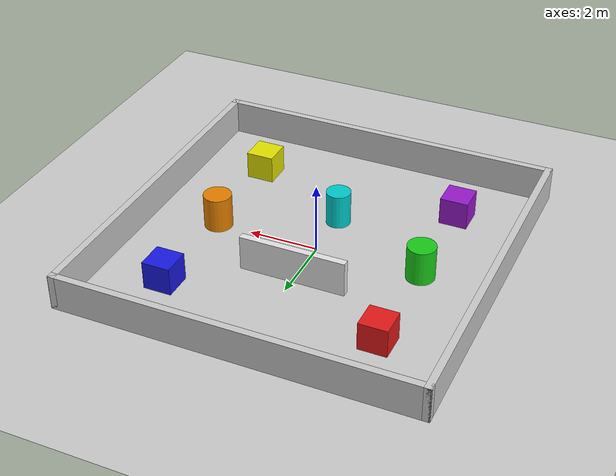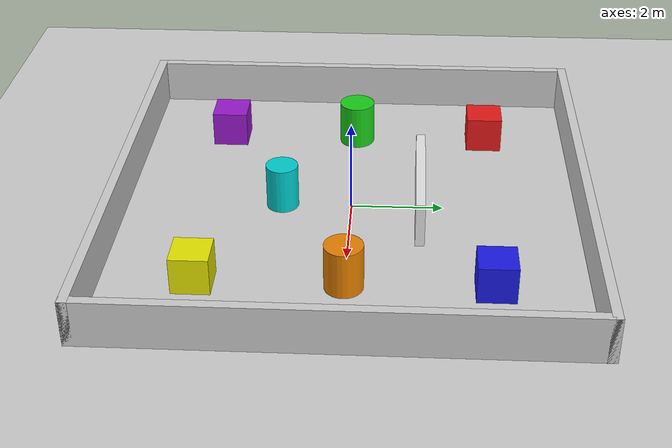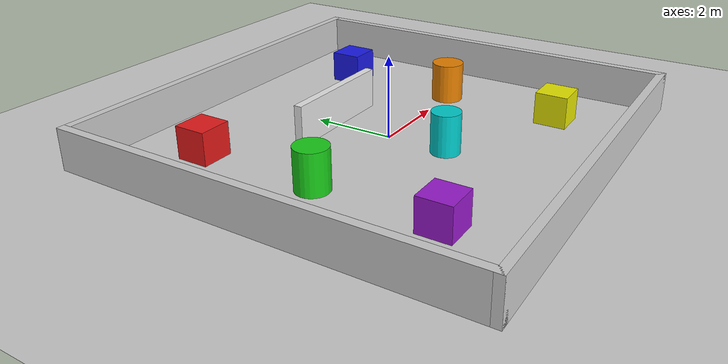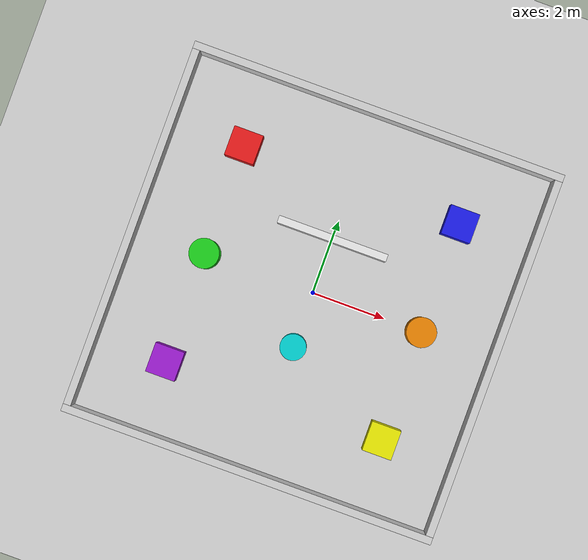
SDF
<?xml version="1.0"?>
<sdf version="1.6">
  <world name="simple_world">

    <!-- ===== LIGHTING ===== -->
    <light name="sun" type="directional">
      <cast_shadows>true</cast_shadows>
      <pose>0 0 10 0 0 0</pose>
      <diffuse>0.9 0.9 0.9 1</diffuse>
      <specular>0.2 0.2 0.2 1</specular>
      <direction>-0.5 0.1 -0.9</direction>
    </light>

    <include><uri>model://ground_plane</uri></include>

    <!-- North wall -->
    <model name="wall_north"><static>true</static>
      <pose>0 5 0.5 0 0 0</pose>
      <link name="link">
        <collision name="c">
          <geometry><box><size>10.2 0.2 1.0</size></box></geometry>
        </collision>
        <visual name="v">
          <geometry><box><size>10.2 0.2 1.0</size></box></geometry>
          <material>
            <ambient>0.8 0.8 0.8 1</ambient>
            <diffuse>0.8 0.8 0.8 1</diffuse>
          </material>
        </visual>
      </link>
    </model>

    <!-- South wall -->
    <model name="wall_south"><static>true</static>
      <pose>0 -5 0.5 0 0 0</pose>
      <link name="link">
        <collision name="c">
          <geometry><box><size>10.2 0.2 1.0</size></box></geometry>
        </collision>
        <visual name="v">
          <geometry><box><size>10.2 0.2 1.0</size></box></geometry>
          <material>
            <ambient>0.8 0.8 0.8 1</ambient>
            <diffuse>0.8 0.8 0.8 1</diffuse>
          </material>
        </visual>
      </link>
    </model>

    <!-- East wall -->
    <model name="wall_east"><static>true</static>
      <pose>5 0 0.5 0 0 0</pose>
      <link name="link">
        <collision name="c">
          <geometry><box><size>0.2 10.2 1.0</size></box></geometry>
        </collision>
        <visual name="v">
          <geometry><box><size>0.2 10.2 1.0</size></box></geometry>
          <material>
            <ambient>0.8 0.8 0.8 1</ambient>
            <diffuse>0.8 0.8 0.8 1</diffuse>
          </material>
        </visual>
      </link>
    </model>

    <!-- West wall -->
    <model name="wall_west"><static>true</static>
      <pose>-5 0 0.5 0 0 0</pose>
      <link name="link">
        <collision name="c">
          <geometry><box><size>0.2 10.2 1.0</size></box></geometry>
        </collision>
        <visual name="v">
          <geometry><box><size>0.2 10.2 1.0</size></box></geometry>
          <material>
            <ambient>0.8 0.8 0.8 1</ambient>
            <diffuse>0.8 0.8 0.8 1</diffuse>
          </material>
        </visual>
      </link>
    </model>

    <!-- Obstacle 1: Red box — top left area -->
    <model name="obs_1"><static>true</static>
      <pose>-3 3 0.4 0 0 0</pose>
      <link name="link">
        <collision name="c">
          <geometry><box><size>0.8 0.8 0.8</size></box></geometry>
        </collision>
        <visual name="v">
          <geometry><box><size>0.8 0.8 0.8</size></box></geometry>
          <material>
            <ambient>0.9 0.1 0.1 1</ambient>
            <diffuse>0.9 0.1 0.1 1</diffuse>
          </material>
        </visual>
      </link>
    </model>

    <!-- Obstacle 2: Blue box — top right area -->
    <model name="obs_2"><static>true</static>
      <pose>3 3 0.4 0 0 0</pose>
      <link name="link">
        <collision name="c">
          <geometry><box><size>0.8 0.8 0.8</size></box></geometry>
        </collision>
        <visual name="v">
          <geometry><box><size>0.8 0.8 0.8</size></box></geometry>
          <material>
            <ambient>0.1 0.1 0.9 1</ambient>
            <diffuse>0.1 0.1 0.9 1</diffuse>
          </material>
        </visual>
      </link>
    </model>

    <!-- Obstacle 3: Green cylinder — left side -->
    <model name="obs_3"><static>true</static>
      <pose>-3 0 0.5 0 0 0</pose>
      <link name="link">
        <collision name="c">
          <geometry>
            <cylinder><radius>0.4</radius><length>1.0</length></cylinder>
          </geometry>
        </collision>
        <visual name="v">
          <geometry>
            <cylinder><radius>0.4</radius><length>1.0</length></cylinder>
          </geometry>
          <material>
            <ambient>0.1 0.8 0.1 1</ambient>
            <diffuse>0.1 0.8 0.1 1</diffuse>
          </material>
        </visual>
      </link>
    </model>

    <!-- Obstacle 4: Orange cylinder — right side -->
    <model name="obs_4"><static>true</static>
      <pose>3 0 0.5 0 0 0</pose>
      <link name="link">
        <collision name="c">
          <geometry>
            <cylinder><radius>0.4</radius><length>1.0</length></cylinder>
          </geometry>
        </collision>
        <visual name="v">
          <geometry>
            <cylinder><radius>0.4</radius><length>1.0</length></cylinder>
          </geometry>
          <material>
            <ambient>0.9 0.5 0.0 1</ambient>
            <diffuse>0.9 0.5 0.0 1</diffuse>
          </material>
        </visual>
      </link>
    </model>

    <!-- Obstacle 5: Purple box — bottom left -->
    <model name="obs_5"><static>true</static>
      <pose>-3 -3 0.4 0 0 0</pose>
      <link name="link">
        <collision name="c">
          <geometry><box><size>0.8 0.8 0.8</size></box></geometry>
        </collision>
        <visual name="v">
          <geometry><box><size>0.8 0.8 0.8</size></box></geometry>
          <material>
            <ambient>0.6 0.1 0.8 1</ambient>
            <diffuse>0.6 0.1 0.8 1</diffuse>
          </material>
        </visual>
      </link>
    </model>

    <!-- Obstacle 6: Yellow box — bottom right -->
    <model name="obs_6"><static>true</static>
      <pose>3 -3 0.4 0 0 0</pose>
      <link name="link">
        <collision name="c">
          <geometry><box><size>0.8 0.8 0.8</size></box></geometry>
        </collision>
        <visual name="v">
          <geometry><box><size>0.8 0.8 0.8</size></box></geometry>
          <material>
            <ambient>0.9 0.9 0.0 1</ambient>
            <diffuse>0.9 0.9 0.0 1</diffuse>
          </material>
        </visual>
      </link>
    </model>

    <!-- Obstacle 7: White long wall — horizontal centre divider -->
    <!-- Has a GAP on each side so A* can always find a path -->
    <model name="obs_7"><static>true</static>
      <pose>0 1.5 0.5 0 0 0</pose>
      <link name="link">
        <collision name="c">
          <geometry><box><size>3.0 0.2 1.0</size></box></geometry>
        </collision>
        <visual name="v">
          <geometry><box><size>3.0 0.2 1.0</size></box></geometry>
          <material>
            <ambient>0.9 0.9 0.9 1</ambient>
            <diffuse>0.9 0.9 0.9 1</diffuse>
          </material>
        </visual>
      </link>
    </model>

    <!-- Obstacle 8: Cyan cylinder — centre top -->
    <model name="obs_8"><static>true</static>
      <pose>0 -1.5 0.5 0 0 0</pose>
      <link name="link">
        <collision name="c">
          <geometry>
            <cylinder><radius>0.35</radius><length>1.0</length></cylinder>
          </geometry>
        </collision>
        <visual name="v">
          <geometry>
            <cylinder><radius>0.35</radius><length>1.0</length></cylinder>
          </geometry>
          <material>
            <ambient>0.0 0.8 0.8 1</ambient>
            <diffuse>0.0 0.8 0.8 1</diffuse>
          </material>
        </visual>
      </link>
    </model>

  </world>
</sdf>
